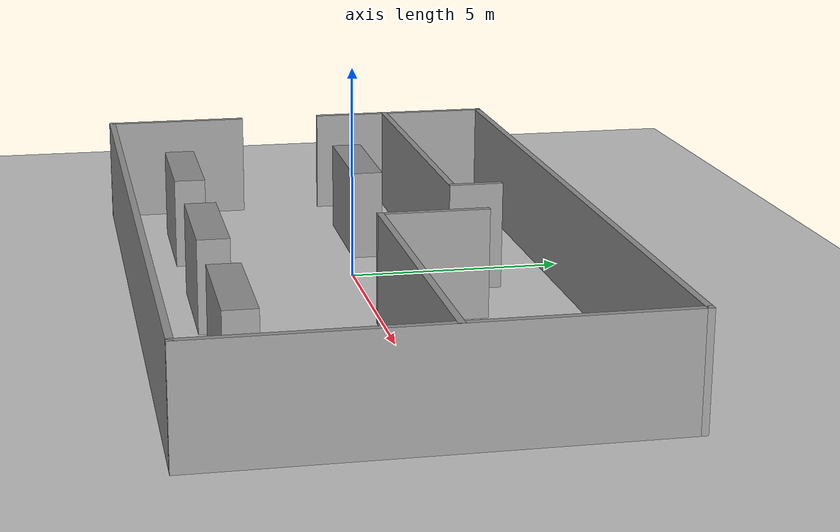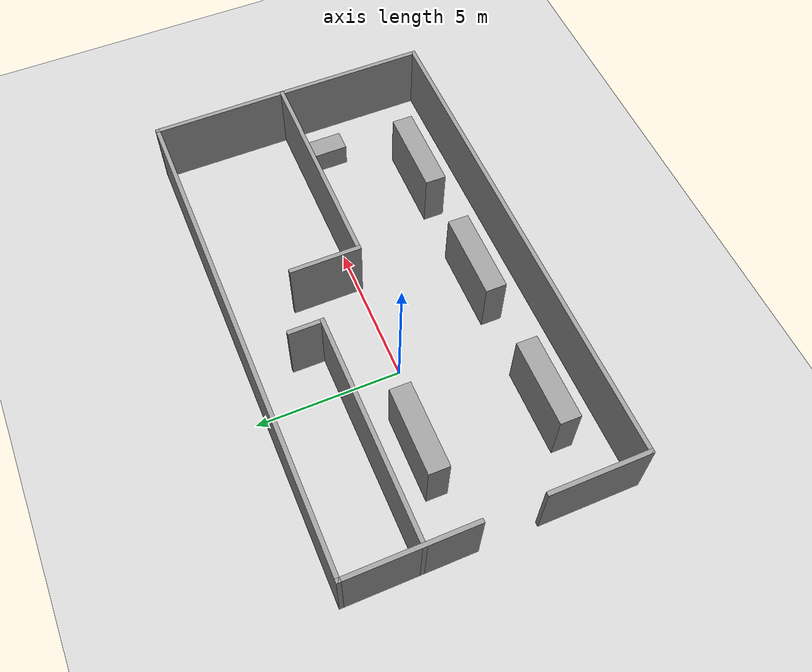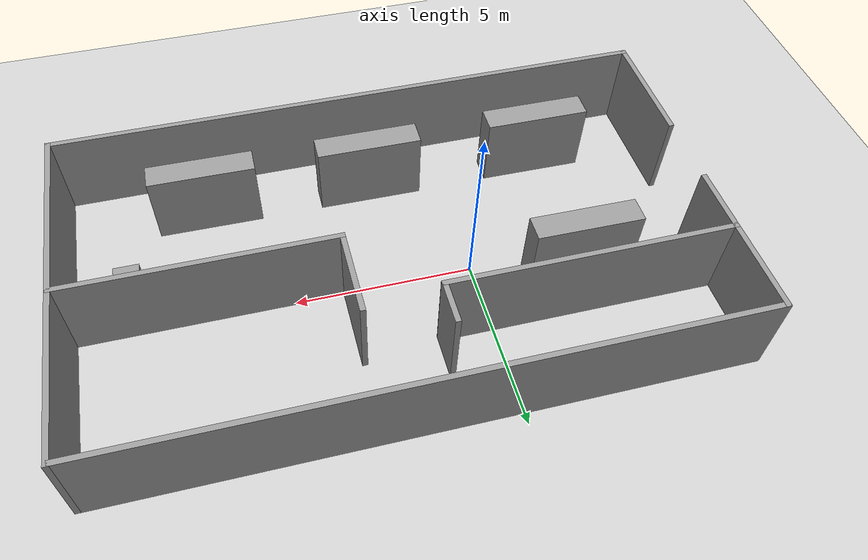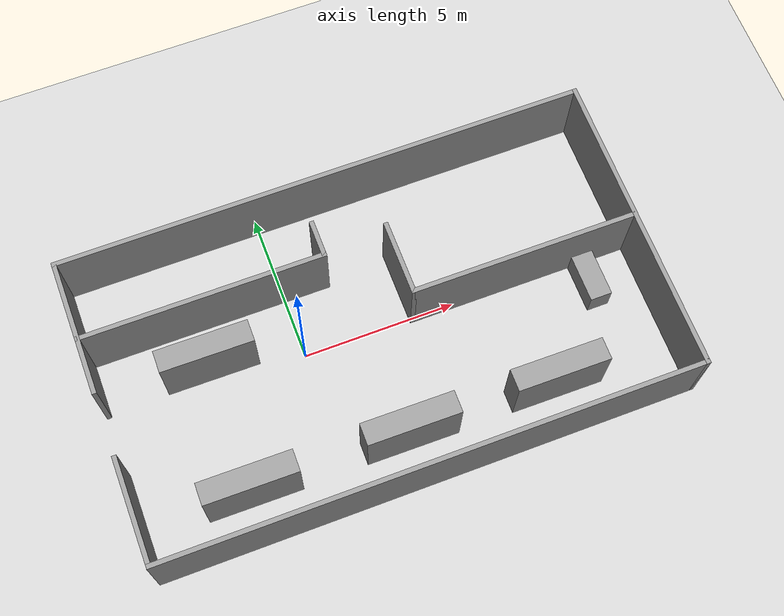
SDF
<sdf version="1.6">
 <world name="default">
  <light name="sun" type="directional">
   <pose>0 0 10 0 -0 0</pose>
   <diffuse>0.8 0.8 0.8 1</diffuse>
   <specular>0.2 0.2 0.2 1</specular>
   <attenuation>
    <range>1000</range>
    <constant>0.9</constant>
    <linear>0.01</linear>
    <quadratic>0.001</quadratic>
   </attenuation>
   <direction>-0.5 0.1 -0.9</direction>
  </light>
  <model name="ground_plane">
   <static>1</static>
   <link name="link">
    <collision name="collision">
     <geometry><plane><normal>0 0 1</normal><size>100 100</size></plane></geometry>
     <surface>
      <contact><collide_bitmask>65535</collide_bitmask></contact>
      <friction><ode><mu>100</mu><mu2>50</mu2></ode></friction>
     </surface>
    </collision>
    <visual name="visual">
     <cast_shadows>0</cast_shadows>
     <geometry><plane><normal>0 0 1</normal><size>100 100</size></plane></geometry>
     <material>
      <script><uri>file://media/materials/scripts/gazebo.material</uri><name>Gazebo/Grey</name></script>
     </material>
    </visual>
   </link>
  </model>
  <gravity>0 0 -9.8</gravity>
  <magnetic_field>6e-06 2.3e-05 -4.2e-05</magnetic_field>
  <atmosphere type="adiabatic"/>
  <physics name="default_physics" default="0" type="ode">
   <max_step_size>0.001</max_step_size>
   <real_time_factor>1</real_time_factor>
   <real_time_update_rate>1000</real_time_update_rate>
  </physics>
  <scene><ambient>0.4 0.4 0.4 1</ambient><background>0.7 0.7 0.7 1</background><shadows>1</shadows></scene>
  <audio><device>default</device></audio>
  <spherical_coordinates>
   <surface_model>EARTH_WGS84</surface_model>
   <latitude_deg>0</latitude_deg>
   <longitude_deg>0</longitude_deg>
   <elevation>0</elevation>
   <heading_deg>0</heading_deg>
  </spherical_coordinates>
  <model name="외벽">
   <pose>2.27969 -0.30344 0 0 -0 0</pose>
   <link name="Wall_1">
    <collision name="Wall_1_Collision">
     <geometry><box><size>17.5 0.15 2.5</size></box></geometry>
     <pose>0 0 1.25 0 -0 0</pose>
    </collision>
    <visual name="Wall_1_Visual">
     <pose>0 0 1.25 0 -0 0</pose>
     <geometry><box><size>17.5 0.15 2.5</size></box></geometry>
     <material>
      <script><uri>file://media/materials/scripts/gazebo.material</uri><name>Gazebo/Grey</name></script>
      <ambient>1 1 1 1</ambient>
     </material>
     <meta><layer>0</layer></meta>
    </visual>
    <pose>5.6e-05 -4.925 0 0 -0 0</pose>
   </link>
   <link name="Wall_10">
    <collision name="Wall_10_Collision">
     <geometry><box><size>1.25 0.15 2.5</size></box></geometry>
     <pose>0 0 1.25 0 -0 0</pose>
    </collision>
    <visual name="Wall_10_Visual">
     <pose>0 0 1.25 0 -0 0</pose>
     <geometry><box><size>1.25 0.15 2.5</size></box></geometry>
     <material>
      <script><uri>file://media/materials/scripts/gazebo.material</uri><name>Gazebo/Grey</name></script>
      <ambient>1 1 1 1</ambient>
     </material>
     <meta><layer>0</layer></meta>
    </visual>
    <pose>-0.825057 2.91103 0 0 -0 1.5708</pose>
   </link>
   <link name="Wall_13">
    <collision name="Wall_13_Collision">
     <geometry><box><size>2.5 0.15 2.5</size></box></geometry>
     <pose>0 0 1.25 0 -0 0</pose>
    </collision>
    <visual name="Wall_13_Visual">
     <pose>0 0 1.25 0 -0 0</pose>
     <geometry><box><size>2.5 0.15 2.5</size></box></geometry>
     <material>
      <script><uri>file://media/materials/scripts/gazebo.material</uri><name>Gazebo/Grey</name></script>
      <ambient>1 1 1 1</ambient>
     </material>
     <meta><layer>0</layer></meta>
    </visual>
    <pose>1.30982 1.4373 0 0 -0 -1.5708</pose>
   </link>
   <link name="Wall_14">
    <collision name="Wall_14_Collision">
     <geometry><box><size>7.5 0.15 2.5</size></box></geometry>
     <pose>0 0 1.25 0 -0 0</pose>
    </collision>
    <visual name="Wall_14_Visual">
     <pose>0 0 1.25 0 -0 0</pose>
     <geometry><box><size>7.5 0.15 2.5</size></box></geometry>
     <material>
      <script><uri>file://media/materials/scripts/gazebo.material</uri><name>Gazebo/Grey</name></script>
      <ambient>1 1 1 1</ambient>
     </material>
     <meta><layer>0</layer></meta>
    </visual>
    <pose>4.98482 0.262301 0 0 -0 0</pose>
   </link>
   <link name="Wall_2">
    <collision name="Wall_2_Collision">
     <geometry><box><size>10 0.15 2.5</size></box></geometry>
     <pose>0 0 1.25 0 -0 0</pose>
    </collision>
    <visual name="Wall_2_Visual">
     <pose>0 0 1.25 0 -0 0</pose>
     <geometry><box><size>10 0.15 2.5</size></box></geometry>
     <material>
      <script><uri>file://media/materials/scripts/gazebo.material</uri><name>Gazebo/Grey</name></script>
      <ambient>1 1 1 1</ambient>
     </material>
     <meta><layer>0</layer></meta>
    </visual>
    <pose>8.67506 0 0 0 -0 1.5708</pose>
   </link>
   <link name="Wall_3">
    <collision name="Wall_3_Collision">
     <geometry><box><size>17.5 0.15 2.5</size></box></geometry>
     <pose>0 0 1.25 0 -0 0</pose>
    </collision>
    <visual name="Wall_3_Visual">
     <pose>0 0 1.25 0 -0 0</pose>
     <geometry><box><size>17.5 0.15 2.5</size></box></geometry>
     <material>
      <script><uri>file://media/materials/scripts/gazebo.material</uri><name>Gazebo/Grey</name></script>
      <ambient>1 1 1 1</ambient>
     </material>
     <meta><layer>0</layer></meta>
    </visual>
    <pose>5.6e-05 4.925 0 0 -0 3.14159</pose>
   </link>
   <link name="Wall_4">
    <collision name="Wall_4_Collision">
     <geometry><box><size>4.5 0.15 2.5</size></box></geometry>
     <pose>0 0 1.25 0 -0 0</pose>
    </collision>
    <visual name="Wall_4_Visual">
     <pose>0 0 1.25 0 -0 0</pose>
     <geometry><box><size>4.5 0.15 2.5</size></box></geometry>
     <material>
      <script><uri>file://media/materials/scripts/gazebo.material</uri><name>Gazebo/Grey</name></script>
      <ambient>1 1 1 1</ambient>
     </material>
     <meta><layer>0</layer></meta>
    </visual>
    <pose>-8.67494 2.75 0 0 -0 -1.5708</pose>
   </link>
   <link name="Wall_6">
    <collision name="Wall_6_Collision">
     <geometry><box><size>3.5 0.15 2.5</size></box></geometry>
     <pose>0 0 1.25 0 -0 0</pose>
    </collision>
    <visual name="Wall_6_Visual">
     <pose>0 0 1.25 0 -0 0</pose>
     <geometry><box><size>3.5 0.15 2.5</size></box></geometry>
     <material>
      <script><uri>file://media/materials/scripts/gazebo.material</uri><name>Gazebo/Grey</name></script>
      <ambient>1 1 1 1</ambient>
     </material>
     <meta><layer>0</layer></meta>
    </visual>
    <pose>-8.67494 -3.25 0 0 -0 -1.5708</pose>
   </link>
   <link name="Wall_9">
    <collision name="Wall_9_Collision">
     <geometry><box><size>8 0.15 2.5</size></box></geometry>
     <pose>0 0 1.25 0 -0 0</pose>
    </collision>
    <visual name="Wall_9_Visual">
     <pose>0 0 1.25 0 -0 0</pose>
     <geometry><box><size>8 0.15 2.5</size></box></geometry>
     <material>
      <script><uri>file://media/materials/scripts/gazebo.material</uri><name>Gazebo/Grey</name></script>
      <ambient>1 1 1 1</ambient>
     </material>
     <meta><layer>0</layer></meta>
    </visual>
    <pose>-4.75006 2.3478 0 0 -0 0</pose>
   </link>
   <static>1</static>
  </model>
  <model name="box">
   <model name="box_0">
    <link name="link">
     <inertial>
      <mass>1.54709</mass>
      <inertia><ixx>1.74818</ixx><ixy>0</ixy><ixz>0</ixz><iyy>0.651088</iyy><iyz>0</iyz><izz>1.23298</izz></inertia>
     </inertial>
     <pose>3.71832 -1.57148 0.517731 0 0 -1.57837</pose>
     <visual name="visual">
      <geometry><box><size>0.725964 3.0061 2.12677</size></box></geometry>
      <material>
       <script><name>Gazebo/Grey</name><uri>file://media/materials/scripts/gazebo.material</uri></script>
      </material>
     </visual>
     <collision name="collision">
      <geometry><box><size>0.725964 3.0061 2.12677</size></box></geometry>
      <surface>
       <friction>
        <ode><mu>1</mu><mu2>1</mu2><fdir1>0 0 0</fdir1><slip1>0</slip1><slip2>0</slip2></ode>
        <torsional>
         <coefficient>1</coefficient>
         <patch_radius>0</patch_radius>
         <surface_radius>0</surface_radius>
         <use_patch_radius>1</use_patch_radius>
         <ode><slip>0</slip></ode>
        </torsional>
       </friction>
       <bounce><restitution_coefficient>0</restitution_coefficient><threshold>1e+06</threshold></bounce>
       <contact>
        <collide_without_contact>0</collide_without_contact>
        <collide_without_contact_bitmask>1</collide_without_contact_bitmask>
        <collide_bitmask>1</collide_bitmask>
        <ode>
         <soft_cfm>0</soft_cfm>
         <soft_erp>0.2</soft_erp>
         <kp>1e+13</kp>
         <kd>1</kd>
         <max_vel>0.01</max_vel>
         <min_depth>0</min_depth>
        </ode>
        <bullet>
         <split_impulse>1</split_impulse>
         <split_impulse_penetration_threshold>-0.01</split_impulse_penetration_threshold>
         <soft_cfm>0</soft_cfm>
         <soft_erp>0.2</soft_erp>
         <kp>1e+13</kp>
         <kd>1</kd>
        </bullet>
       </contact>
      </surface>
     </collision>
    </link>
    <static>0</static>
    <pose>-1.605 2.25772 -1e-06 0 -0 0</pose>
   </model>
   <model name="box_0_0">
    <link name="link">
     <inertial>
      <mass>1.54709</mass>
      <inertia><ixx>1.74818</ixx><ixy>0</ixy><ixz>0</ixz><iyy>0.651088</iyy><iyz>0</iyz><izz>1.23298</izz></inertia>
     </inertial>
     <pose>3.71832 -1.57148 0.517731 0 0 -1.57837</pose>
     <visual name="visual">
      <geometry><box><size>0.725964 3.0061 2.12677</size></box></geometry>
      <material>
       <script><name>Gazebo/Grey</name><uri>file://media/materials/scripts/gazebo.material</uri></script>
      </material>
     </visual>
     <collision name="collision">
      <geometry><box><size>0.725964 3.0061 2.12677</size></box></geometry>
      <surface>
       <friction>
        <ode><mu>1</mu><mu2>1</mu2><fdir1>0 0 0</fdir1><slip1>0</slip1><slip2>0</slip2></ode>
        <torsional>
         <coefficient>1</coefficient>
         <patch_radius>0</patch_radius>
         <surface_radius>0</surface_radius>
         <use_patch_radius>1</use_patch_radius>
         <ode><slip>0</slip></ode>
        </torsional>
       </friction>
       <bounce><restitution_coefficient>0</restitution_coefficient><threshold>1e+06</threshold></bounce>
       <contact>
        <collide_without_contact>0</collide_without_contact>
        <collide_without_contact_bitmask>1</collide_without_contact_bitmask>
        <collide_bitmask>1</collide_bitmask>
        <ode>
         <soft_cfm>0</soft_cfm>
         <soft_erp>0.2</soft_erp>
         <kp>1e+13</kp>
         <kd>1</kd>
         <max_vel>0.01</max_vel>
         <min_depth>0</min_depth>
        </ode>
        <bullet>
         <split_impulse>1</split_impulse>
         <split_impulse_penetration_threshold>-0.01</split_impulse_penetration_threshold>
         <soft_cfm>0</soft_cfm>
         <soft_erp>0.2</soft_erp>
         <kp>1e+13</kp>
         <kd>1</kd>
        </bullet>
       </contact>
      </surface>
     </collision>
    </link>
    <static>0</static>
    <pose>-1.65884 -2.05907 -0 0 -0 0</pose>
   </model>
   <model name="box_0_1">
    <link name="link">
     <inertial>
      <mass>1.54709</mass>
      <inertia><ixx>1.74818</ixx><ixy>0</ixy><ixz>0</ixz><iyy>0.651088</iyy><iyz>0</iyz><izz>1.23298</izz></inertia>
     </inertial>
     <pose>3.71832 -1.57148 0.517731 0 0 -1.57837</pose>
     <visual name="visual">
      <geometry><box><size>0.725964 3.0061 2.12677</size></box></geometry>
      <material>
       <script><name>Gazebo/Grey</name><uri>file://media/materials/scripts/gazebo.material</uri></script>
      </material>
     </visual>
     <collision name="collision">
      <geometry><box><size>0.725964 3.0061 2.12677</size></box></geometry>
      <surface>
       <friction>
        <ode><mu>1</mu><mu2>1</mu2><fdir1>0 0 0</fdir1><slip1>0</slip1><slip2>0</slip2></ode>
        <torsional>
         <coefficient>1</coefficient>
         <patch_radius>0</patch_radius>
         <surface_radius>0</surface_radius>
         <use_patch_radius>1</use_patch_radius>
         <ode><slip>0</slip></ode>
        </torsional>
       </friction>
       <bounce><restitution_coefficient>0</restitution_coefficient><threshold>1e+06</threshold></bounce>
       <contact>
        <collide_without_contact>0</collide_without_contact>
        <collide_without_contact_bitmask>1</collide_without_contact_bitmask>
        <collide_bitmask>1</collide_bitmask>
        <ode>
         <soft_cfm>0</soft_cfm>
         <soft_erp>0.2</soft_erp>
         <kp>1e+13</kp>
         <kd>1</kd>
         <max_vel>0.01</max_vel>
         <min_depth>0</min_depth>
        </ode>
        <bullet>
         <split_impulse>1</split_impulse>
         <split_impulse_penetration_threshold>-0.01</split_impulse_penetration_threshold>
         <soft_cfm>0</soft_cfm>
         <soft_erp>0.2</soft_erp>
         <kp>1e+13</kp>
         <kd>1</kd>
        </bullet>
       </contact>
      </surface>
     </collision>
    </link>
    <static>0</static>
    <pose>3.44009 -2.04988 2e-06 0 -0 0</pose>
   </model>
   <model name="box_0_2">
    <link name="link">
     <inertial>
      <mass>1.54709</mass>
      <inertia><ixx>1.74818</ixx><ixy>0</ixy><ixz>0</ixz><iyy>0.651088</iyy><iyz>0</iyz><izz>1.23298</izz></inertia>
     </inertial>
     <pose>3.71832 -1.57148 0.517731 0 0 -1.57837</pose>
     <visual name="visual">
      <geometry><box><size>0.725964 3.0061 2.12677</size></box></geometry>
      <material>
       <script><name>Gazebo/Grey</name><uri>file://media/materials/scripts/gazebo.material</uri></script>
      </material>
     </visual>
     <collision name="collision">
      <geometry><box><size>0.725964 3.0061 2.12677</size></box></geometry>
      <surface>
       <friction>
        <ode><mu>1</mu><mu2>1</mu2><fdir1>0 0 0</fdir1><slip1>0</slip1><slip2>0</slip2></ode>
        <torsional>
         <coefficient>1</coefficient>
         <patch_radius>0</patch_radius>
         <surface_radius>0</surface_radius>
         <use_patch_radius>1</use_patch_radius>
         <ode><slip>0</slip></ode>
        </torsional>
       </friction>
       <bounce><restitution_coefficient>0</restitution_coefficient><threshold>1e+06</threshold></bounce>
       <contact>
        <collide_without_contact>0</collide_without_contact>
        <collide_without_contact_bitmask>1</collide_without_contact_bitmask>
        <collide_bitmask>1</collide_bitmask>
        <ode>
         <soft_cfm>0</soft_cfm>
         <soft_erp>0.2</soft_erp>
         <kp>1e+13</kp>
         <kd>1</kd>
         <max_vel>0.01</max_vel>
         <min_depth>0</min_depth>
        </ode>
        <bullet>
         <split_impulse>1</split_impulse>
         <split_impulse_penetration_threshold>-0.01</split_impulse_penetration_threshold>
         <soft_cfm>0</soft_cfm>
         <soft_erp>0.2</soft_erp>
         <kp>1e+13</kp>
         <kd>1</kd>
        </bullet>
       </contact>
      </surface>
     </collision>
    </link>
    <static>0</static>
    <pose>8.24553 -2.06253 3e-06 0 -0 0</pose>
   </model>
   <static>0</static>
   <pose>-5.03583 -0.044844 0.545645 0 -3e-06 -6.3e-05</pose>
  </model>
  <model name="counterBox">
   <link name="link">
    <inertial>
     <mass>0.975977</mass>
     <inertia>
      <ixx>0.261963</ixx>
      <ixy>0</ixy>
      <ixz>0</ixz>
      <iyy>0.103799</iyy>
      <iyz>0</iyz>
      <izz>0.24007</izz>
     </inertia>
    </inertial>
    <pose>1e-06 0.112954 -0 0 -0 0</pose>
    <visual name="visual">
     <geometry><box><size>0.709602 1.56468 0.879043</size></box></geometry>
     <material>
      <script><name>Gazebo/Grey</name><uri>file://media/materials/scripts/gazebo.material</uri></script>
     </material>
    </visual>
    <collision name="collision">
     <geometry><box><size>0.709602 1.56468 0.879043</size></box></geometry>
     <surface>
      <friction>
       <ode><mu>1</mu><mu2>1</mu2><fdir1>0 0 0</fdir1><slip1>0</slip1><slip2>0</slip2></ode>
       <torsional>
        <coefficient>1</coefficient>
        <patch_radius>0</patch_radius>
        <surface_radius>0</surface_radius>
        <use_patch_radius>1</use_patch_radius>
        <ode><slip>0</slip></ode>
       </torsional>
      </friction>
      <bounce><restitution_coefficient>0</restitution_coefficient><threshold>1e+06</threshold></bounce>
      <contact>
       <collide_without_contact>0</collide_without_contact>
       <collide_without_contact_bitmask>1</collide_without_contact_bitmask>
       <collide_bitmask>1</collide_bitmask>
       <ode>
        <soft_cfm>0</soft_cfm>
        <soft_erp>0.2</soft_erp>
        <kp>1e+13</kp>
        <kd>1</kd>
        <max_vel>0.01</max_vel>
        <min_depth>0</min_depth>
       </ode>
       <bullet>
        <split_impulse>1</split_impulse>
        <split_impulse_penetration_threshold>-0.01</split_impulse_penetration_threshold>
        <soft_cfm>0</soft_cfm>
        <soft_erp>0.2</soft_erp>
        <kp>1e+13</kp>
        <kd>1</kd>
       </bullet>
      </contact>
     </surface>
    </collision>
   </link>
   <static>0</static>
   <pose>9.34884 -1.02976 0.439522 -0 -1e-06 -4.2e-05</pose>
  </model>
 </world>
</sdf>
